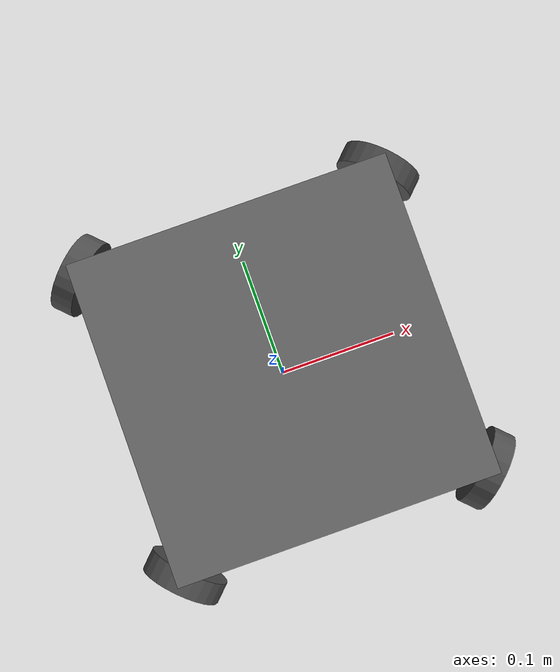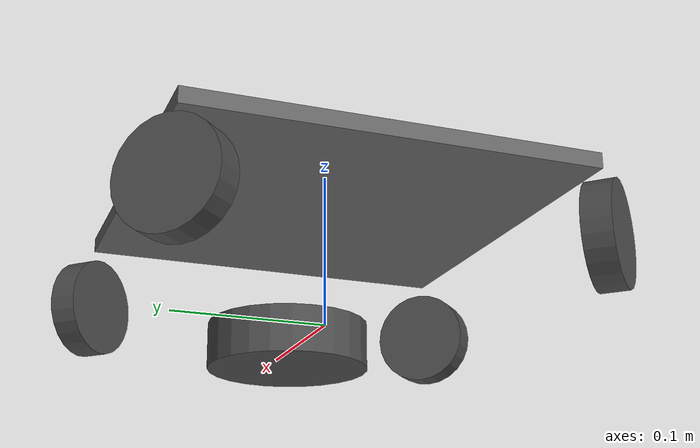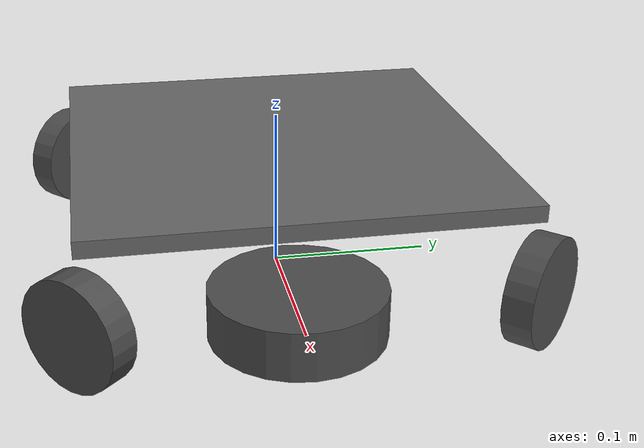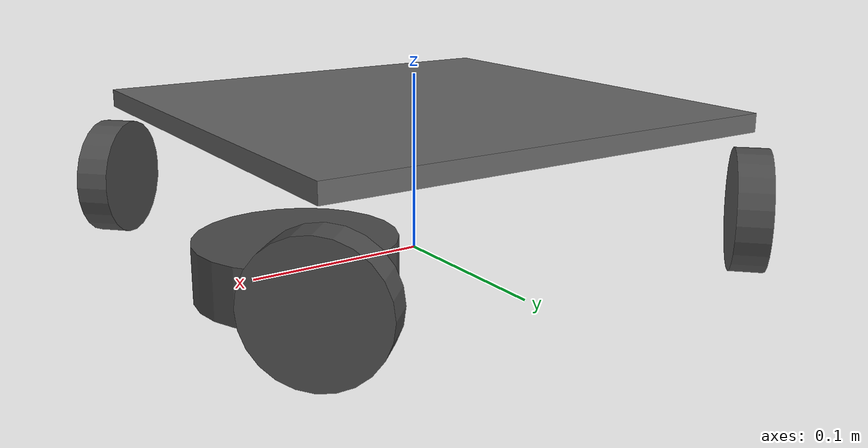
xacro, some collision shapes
<?xml version="1.0" ?>
<robot name="turtlebot3_conveyor"
  xmlns:xacro="http://ros.org/wiki/xacro">
  <xacro:include filename="tb3_conveyor_macro.xacro"/>

  <link name="base_footprint"/>

  <joint name="base_joint" type="fixed">
    <parent link="base_footprint"/>
    <child link="base_link"/>
    <origin xyz="0.0 0.0 0.010" rpy="0 0 0"/>
  </joint>

  <link name="base_link">
    <visual>
      <origin xyz="0 0 0.070" rpy="0 0 0"/>
      <geometry>
        <box size="${base_length} ${base_length} 0.01"/>
      </geometry>
      <material name="light_black"/>
    </visual>

    <collision>
      <origin xyz="0 0 0.070" rpy="0 0 0"/>
      <geometry>
        <box size="${base_length} ${base_length} 0.01"/>
      </geometry>
    </collision>

    <inertial>
      <origin xyz="0 0 0" rpy="0 0 0"/>
      <mass value="8.2573504e-01"/>
      <inertia ixx="2.2124416e-03" ixy="-1.2294101e-05" ixz="3.4938785e-05" iyy="2.1193702e-03" iyz="-5.0120904e-06" izz="2.0064271e-03" />
    </inertial>
  </link>

  <xacro:swerve_wheel name="right_front" xy="${base_length/2} ${-base_length/2}" yaw="0.785"/>
  <xacro:swerve_wheel name="left_front" xy="${base_length/2} ${base_length/2}" yaw="${0.785+1.571}"/>
  <xacro:swerve_wheel name="left_rear" xy="${-base_length/2} ${base_length/2}" yaw="${0.785+1.571*2}"/>
  <xacro:swerve_wheel name="right_rear" xy="${-base_length/2} ${-base_length/2}" yaw="${0.785+1.571*3}"/>

  <joint name="imu_joint" type="fixed">
    <parent link="base_link"/>
    <child link="imu_link"/>
    <origin xyz="0 0 0.068" rpy="0 0 0"/>
  </joint>

  <link name="imu_link"/>

  <joint name="camera_joint" type="fixed">
    <parent link="base_link"/>
    <child link="camera_link"/>
    <origin xyz="0.03 0 0.2" rpy="0 -0.349 0"/>
  </joint>

  <link name="camera_link"/>

  <joint name="scan_joint" type="fixed">
    <parent link="base_link"/>
    <child link="base_scan"/>
    <origin xyz="0.09 0 0" rpy="0 0 3.14"/>
  </joint>

  <link name="base_scan">
    <visual>
      <origin xyz="0 0 0.0" rpy="0 0 0"/>
      <geometry>
        <mesh filename="package://turtlebot3_description/meshes/sensors/lds.stl" scale="0.001 0.001 0.001"/>
      </geometry>
      <material name="dark"/>
    </visual>

    <collision>
      <origin xyz="0.015 0 -0.0065" rpy="0 0 0"/>
      <geometry>
        <cylinder length="0.0315" radius="0.055"/>
      </geometry>
    </collision>

    <inertial>
      <mass value="0.114" />
      <origin xyz="0 0 0" />
      <inertia ixx="0.001" ixy="0.0" ixz="0.0" iyy="0.001" iyz="0.0" izz="0.001" />
    </inertial>
  </link>

</robot>

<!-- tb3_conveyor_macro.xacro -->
<robot xmlns:xacro="http://ros.org/wiki/xacro">

  <xacro:property name="base_length" value="0.256"/>

  <!-- Init colour -->
  <material name="black">
      <color rgba="0.0 0.0 0.0 1.0"/>
  </material>

  <material name="dark">
    <color rgba="0.3 0.3 0.3 1.0"/>
  </material>

  <material name="light_black">
    <color rgba="0.4 0.4 0.4 1.0"/>
  </material>

  <material name="blue">
    <color rgba="0.0 0.0 0.8 1.0"/>
  </material>

  <material name="green">
    <color rgba="0.0 0.8 0.0 1.0"/>
  </material>

  <material name="grey">
    <color rgba="0.5 0.5 0.5 1.0"/>
  </material>

  <material name="orange">
    <color rgba="1.0 0.4235 0.0392 1.0"/>
  </material>

  <material name="brown">
    <color rgba="0.8706 0.8118 0.7647 1.0"/>
  </material>

  <material name="red">
    <color rgba="0.8 0.0 0.0 1.0"/>
  </material>

  <material name="white">
    <color rgba="1.0 1.0 1.0 1.0"/>
  </material>

  <xacro:macro name="swerve_wheel" params="name xy yaw">

    <link name = "pivot_${name}_link"/>

    <joint name="pivot_${name}_joint" type="revolute">
      <parent link="base_link"/>
      <child link="pivot_${name}_link"/>
      <origin xyz="${xy} 0.023" rpy="0 0 ${yaw}"/>
      <axis xyz="0 0 1"/>
      <limit effort="1000.0" lower="-1.57" upper="1.57" velocity="0.5"/>
    </joint>

    <link name="wheel_${name}_link">
      <visual>
        <origin xyz="0 0 0" rpy="0 0 0"/>
        <geometry>
          <cylinder length="0.018" radius="0.033"/>
        </geometry>
        <material name="dark"/>
      </visual>

      <collision>
        <origin xyz="0 0 0" rpy="0 0 0"/>
        <geometry>
          <cylinder length="0.018" radius="0.033"/>
        </geometry>
      </collision>

      <inertial>
        <origin xyz="0 0 0" />
        <mass value="2.8498940e-02" />
        <inertia ixx="1.1175580e-05" ixy="-4.2369783e-11" ixz="-5.9381719e-09" iyy="1.1192413e-05" iyz="-1.4400107e-11" izz="2.0712558e-05" />
      </inertial>
    </link>

    <joint name="wheel_${name}_joint" type="continuous">
      <parent link="pivot_${name}_link"/>
      <child link="wheel_${name}_link"/>
      <origin xyz="0 0 0" rpy="-1.57 0 3.14"/>
      <axis xyz="0 0 1"/>
    </joint>

  </xacro:macro>

</robot>
